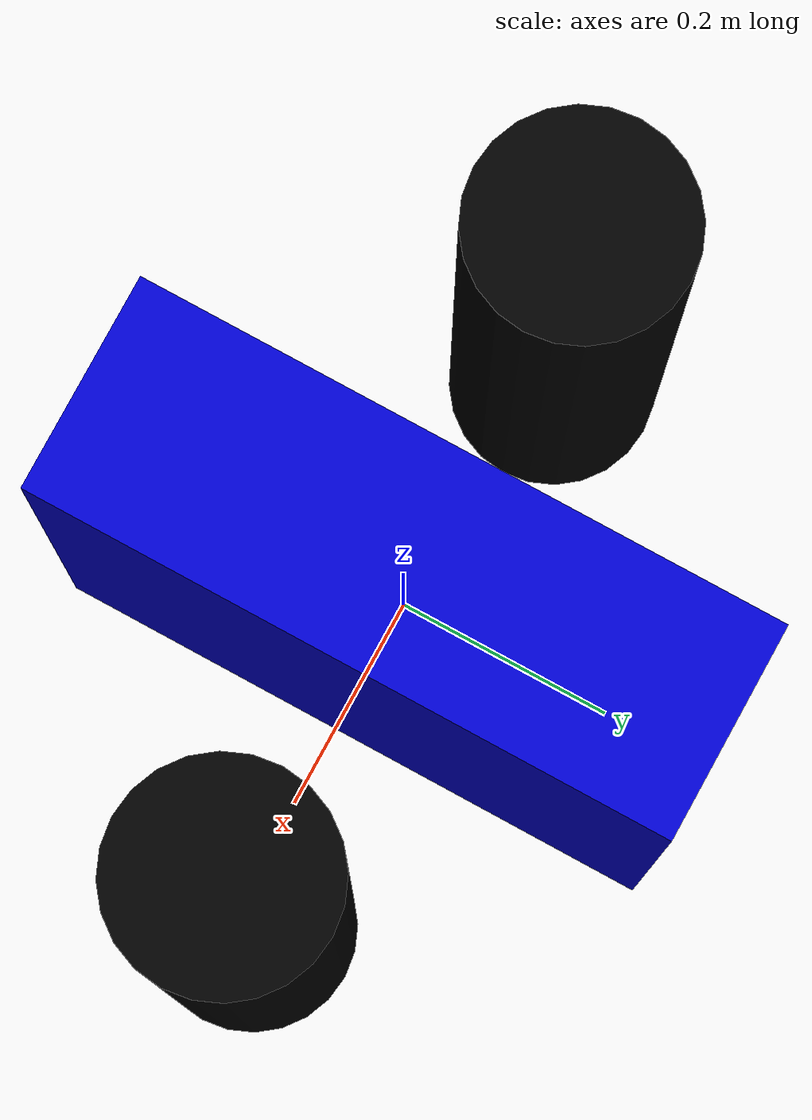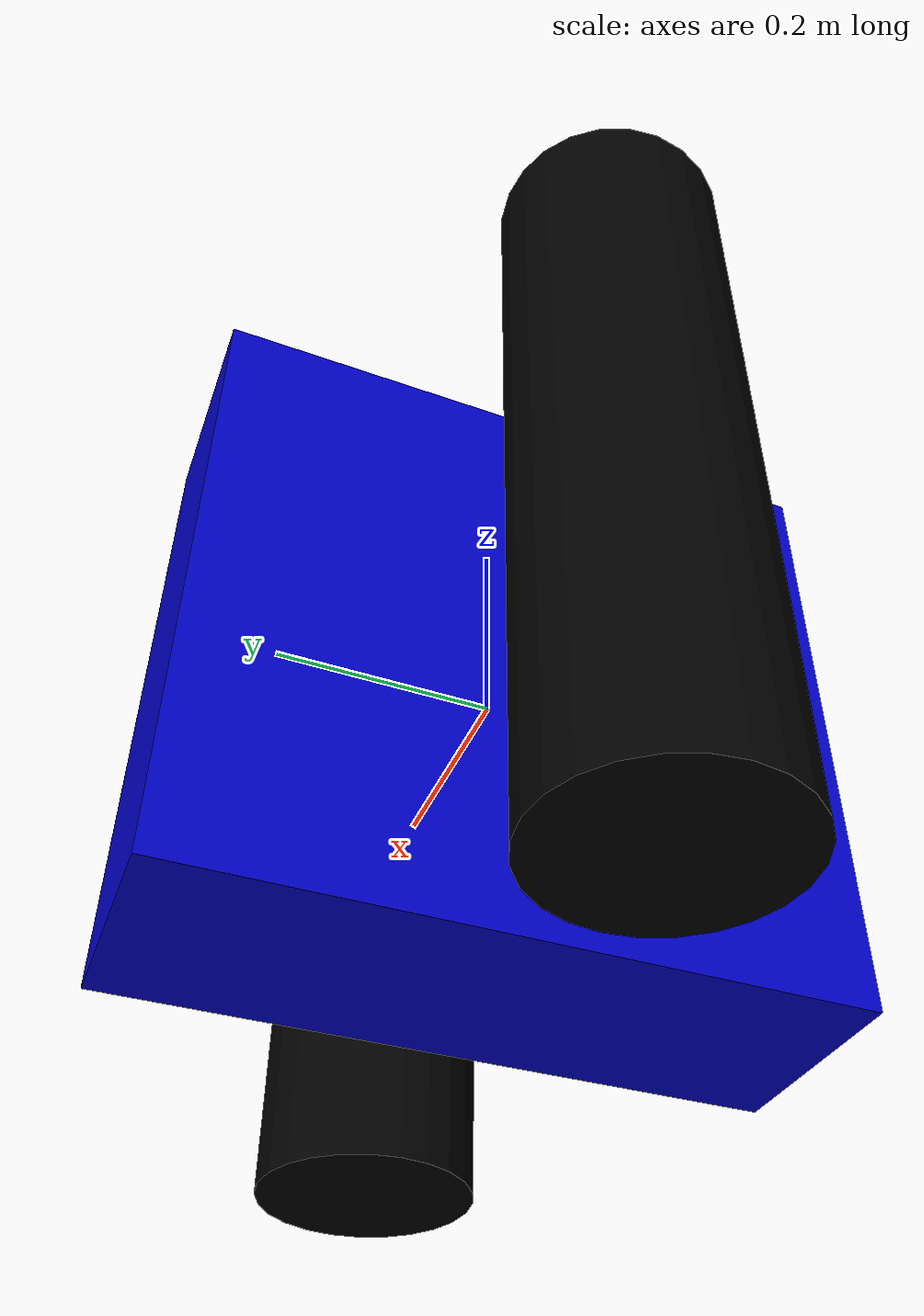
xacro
<?xml version='1.0'?>
<robot name="robot" xmlns:xacro="http://www.ros.org/wiki/xacro">

    <!-- Подключение материалов -->
    <xacro:include filename="$(find my_robot_model)/urdf/materials.xacro"/>

    <!-- Параметры -->
    <xacro:property name="base_length" value="0.2"/>
    <xacro:property name="base_width" value="0.6"/>
    <xacro:property name="base_height" value="0.6"/>

    <xacro:property name="wheel_radius" value="0.1"/>
    <xacro:property name="wheel_length" value="0.7"/>
    <xacro:property name="wheel_offset" value="0.15"/>
    <xacro:property name="material_color" value="grey"/>
    <xacro:include filename="$(find my_robot_model)/urdf/wheel.xacro"/>

    <!-- Базовое звено -->
    <link name='base_link'>
        <visual name='base_visual'>
            <origin xyz="0.0 0.0 0.0" rpy="0.0 0.0 0.0"/>
            <geometry>
                <box size="${base_length} ${base_width} ${base_height}"/>
            </geometry>
            <material name="blue"/>
        </visual>
    </link>

    <!-- Левое колесо -->
    <link name='wheel_left'>
        <visual name='wheel_left_visual'>
            <origin xyz="${wheel_offset} 0 0" rpy="0 0 0"/>
            <geometry>
                <cylinder length="${wheel_length}" radius="${wheel_radius}"/>
            </geometry>
            <material name="black"/>
        </visual>
    </link>

    <joint type="continuous" name="wheel_left_joint">
        <origin xyz="${wheel_offset} 0.0 0" rpy="0 0 0"/>
        <child link="wheel_left"/>
        <parent link="base_link"/>
    </joint>

    <!-- Правое колесо -->
    <link name='wheel_right'>
        <visual name='wheel_right_visual'>
            <origin xyz="-${wheel_offset} 0 0" rpy="0 0 0"/>
            <geometry>
                <cylinder length="${wheel_length}" radius="${wheel_radius}"/>
            </geometry>
            <material name="black"/>
        </visual>
    </link>

    <joint type="continuous" name="wheel_right_joint">
        <origin xyz="-${wheel_offset} 0.0 0" rpy="0 0 0"/>
        <child link="wheel_right"/>
        <parent link="base_link"/>
    </joint>

</robot>

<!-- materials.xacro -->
<robot xmlns:xacro="http://www.ros.org/wiki/xacro">
    <material name="black">
        <color rgba="0.0 0.0 0.0 1.0"/>
    </material>
    <material name="blue">
        <color rgba="0.0 0.0 0.8 1.0"/>
    </material>
    <material name="green">
        <color rgba="${30/255} ${255/255} ${30/255} 1.0"/>
    </material>
    <material name="grey">
        <color rgba="0.2 0.2 0.2 1.0"/>
    </material>
    <material name="orange">
        <color rgba="${255/255} ${108/255} ${10/255} 1.0"/>
    </material>
    <material name="brown">
        <color rgba="0.5 0.25 0.0 1.0"/>
    </material>
</robot>
